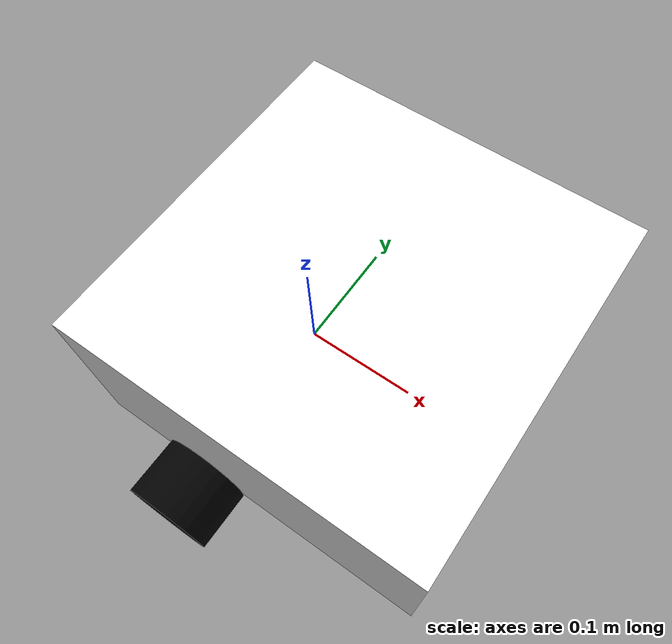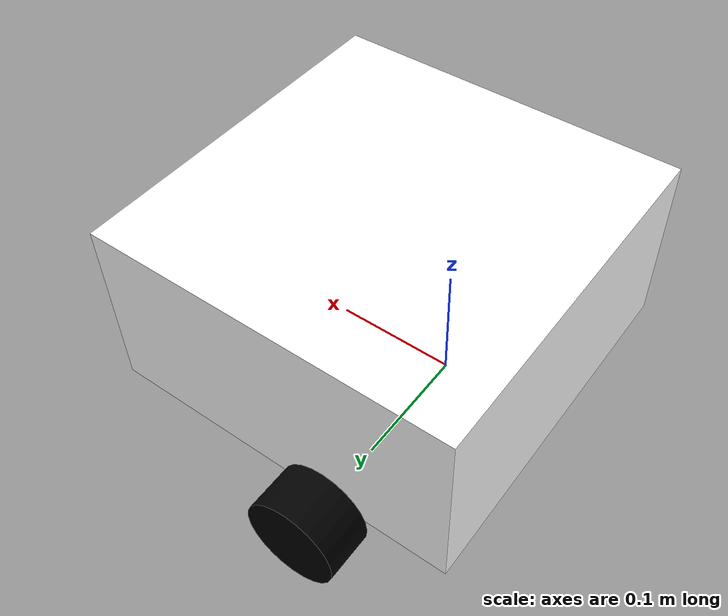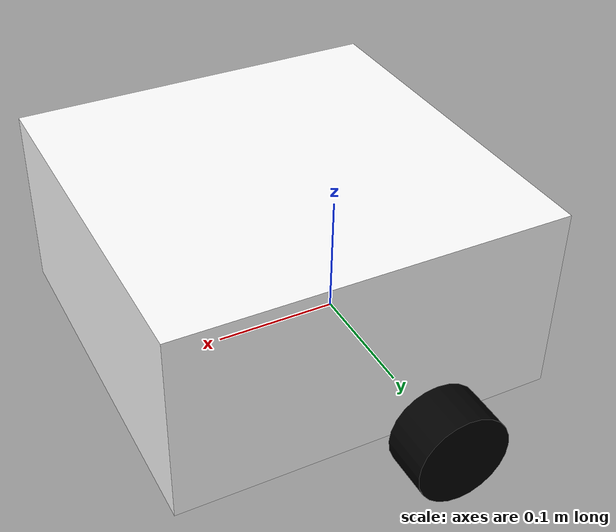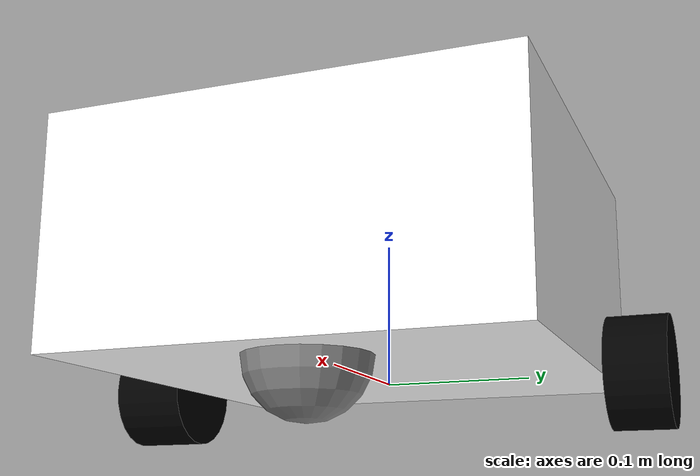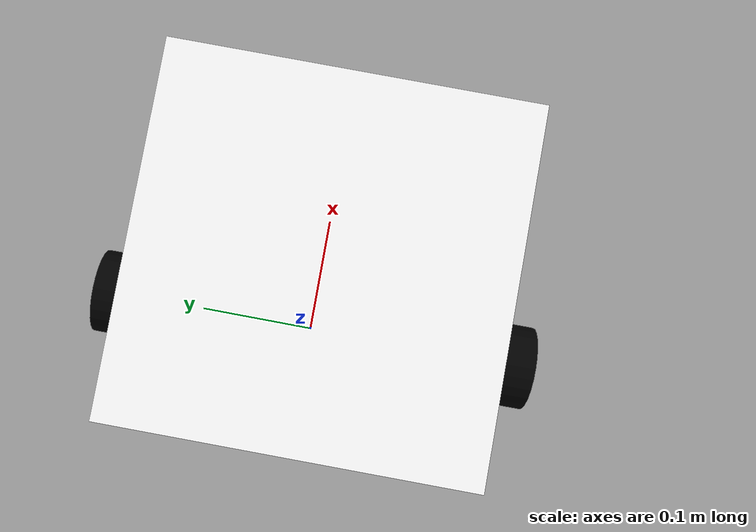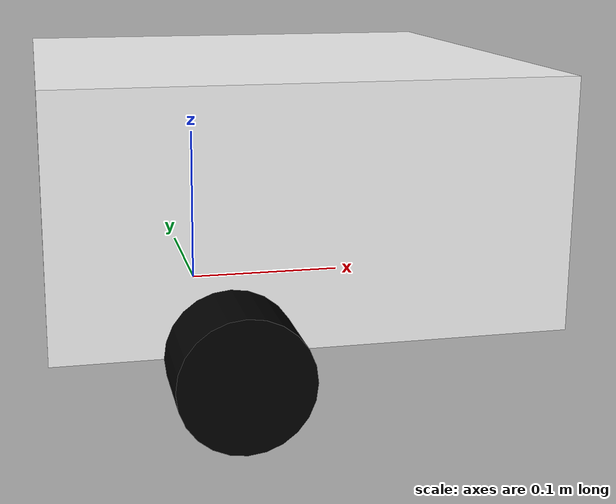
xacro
<?xml version="1.0"?>
<robot xmlns:xacro="http://www.ros.org/wiki/xacro">

    <xacro:include filename="inertial_macros.xacro"/>

    <material name="white">
        <color rgba="1.0 1.0 1.0 1.0"/>
    </material>

    <material name="orange">
        <color rgba="1.0 0.3 0.1 1.0"/>
    </material>

    <material name="blue">
        <color rgba="0.2 0.2 1.0 1.0"/>
    </material>

    <material name="black">
        <color rgba="0.0 0.0 0.0 1.0"/>
    </material>

    <material name="grey">
        <color rgba="0.5 0.5 0.5 1.0"/>
    </material>

    <!-- BASE LINK -->

    <link name="base_link">
    </link>

    <!-- CHASSIS LINK AND CHASSIS_JOINT -->

    <joint name="chassis_joint" type="fixed">
        <parent link="base_link"/>
        <child link="chassis"/>
        <origin xyz="-0.1 0.0 0.0"/>
    </joint>

    <link name="chassis">
        <visual>
            <origin xyz="0.15 0.0 0.075"/>
            <geometry>
                <box size="0.3 0.3 0.15"/>
            </geometry>
            <material name="white"/>
        </visual>
        <collision>
            <origin xyz="0.15 0.0 0.075"/>
            <geometry>
                <box size="0.3 0.3 0.15"/>
            </geometry>
        </collision>
        <xacro:inertial_box mass="0.5" x="0.3" y="0.3" z="0.15">
            <origin xyz="0.15 0.0 0.075" rpy="0 0 0"/>
        </xacro:inertial_box>
    </link>

    <gazebo reference = "chassis">
        <material>Gazebo/White</material>
    </gazebo>

    <!-- LEFT WHEEL LINK -->
    <joint name="left_wheel_joint" type="continuous">
        <parent link="base_link"/>
        <child link="left_wheel"/>
        <origin xyz="0.0 0.175 0.0" rpy="${-pi/2} 0.0 0.0"/>
        <axis xyz="0.0 0.0 1.0"/>
    </joint>

    <link name="left_wheel">
        <visual>
            <geometry>
                <cylinder radius="0.0375" length="0.04"/>
            </geometry>
            <material name="black"/>
        </visual>
        <collision>
            <geometry>
                <cylinder radius="0.0375" length="0.04"/>
            </geometry>
        </collision>
        <xacro:inertial_cylinder mass="0.1" length="0.04" radius="0.0375">
            <origin xyz="0.0 0.0 0.0" rpy="0 0 0"/>
        </xacro:inertial_cylinder>
    </link>

    <gazebo reference = "left_wheel">
        <material>Gazebo/Black</material>
    </gazebo>

    <!-- RIGHT WHEEL LINK -->
    <joint name="right_wheel_joint" type="continuous">
        <parent link="base_link"/>
        <child link="right_wheel"/>
        <origin xyz="0.0 -0.175 0.0" rpy="${pi/2} 0.0 0.0"/>
        <axis xyz="0.0 0.0 1.0"/>
    </joint>

    <link name="right_wheel">
        <visual>
            <geometry>
                <cylinder radius="0.0375" length="0.05"/>
            </geometry>
            <material name="black"/>
        </visual>
        <collision>
            <geometry>
                <cylinder radius="0.0375" length="0.05"/>
            </geometry>
        </collision>
        <xacro:inertial_cylinder mass="0.1" length="0.04" radius="0.0375">
            <origin xyz="0.0 0.0 0.0" rpy="0 0 0"/>
        </xacro:inertial_cylinder>
    </link>

    <gazebo reference = "right_wheel">
        <material>Gazebo/Black</material>
    </gazebo>

    <!-- CASTER WHEEL LINK -->
    <joint name="caster_wheel_joint" type="fixed">
        <parent link="chassis"/>
        <child link="caster_wheel"/>
        <origin xyz="0.24 0.0 0.0"/>
    </joint>

    <link name="caster_wheel">
        <visual>
            <geometry>
                <sphere radius="0.04"/>
            </geometry>
            <material name="grey"/>
        </visual>
        <collision>
            <geometry>
                <sphere radius="0.04"/>
            </geometry>
        </collision>
        <xacro:inertial_sphere mass="0.1" radius="0.04">
            <origin xyz="0.0 0.0 0.0" rpy="0 0 0"/>
        </xacro:inertial_sphere>
    </link>

    <gazebo reference = "caster_wheel">
        <material>Gazebo/Grey</material>
        <mu1 value="0.001"/>
        <mu2 value="0.001"/>
    </gazebo>

</robot>
